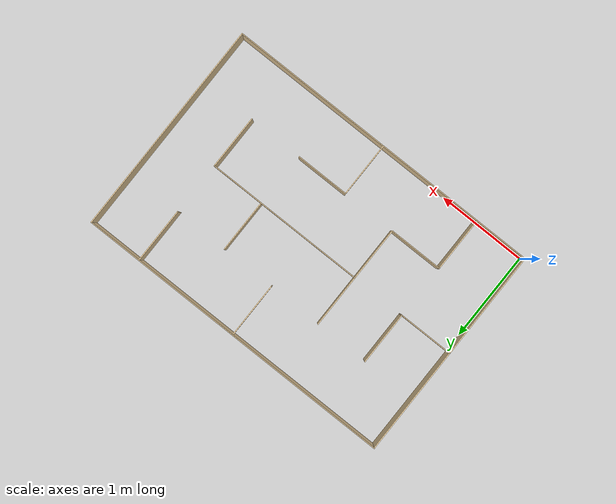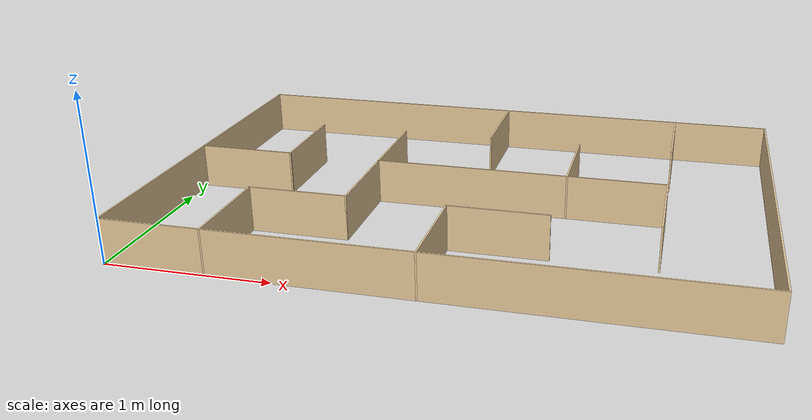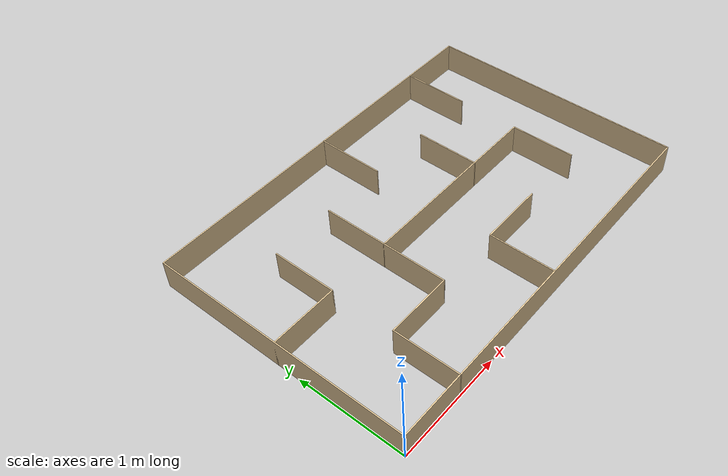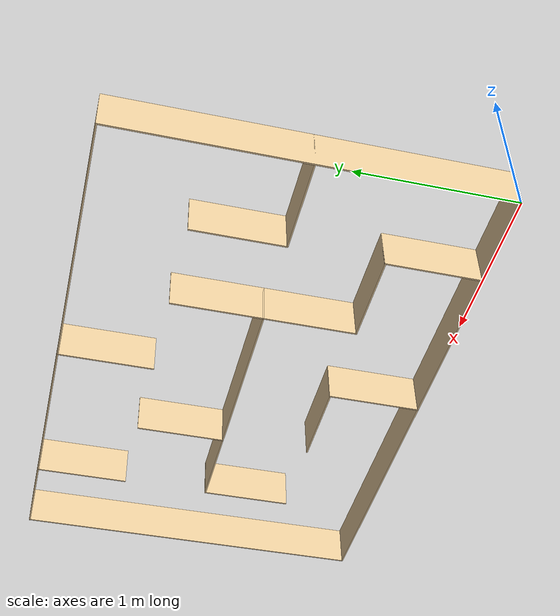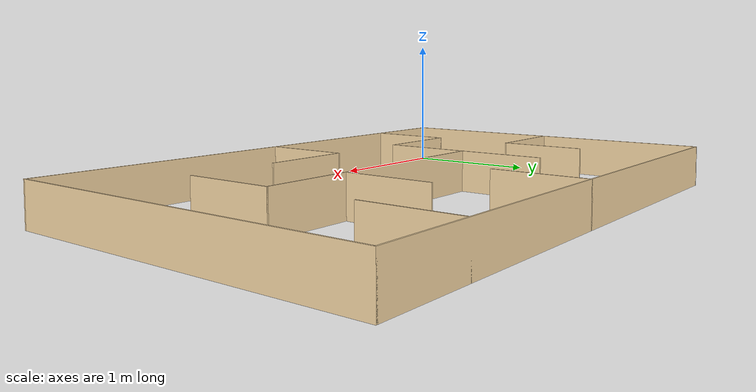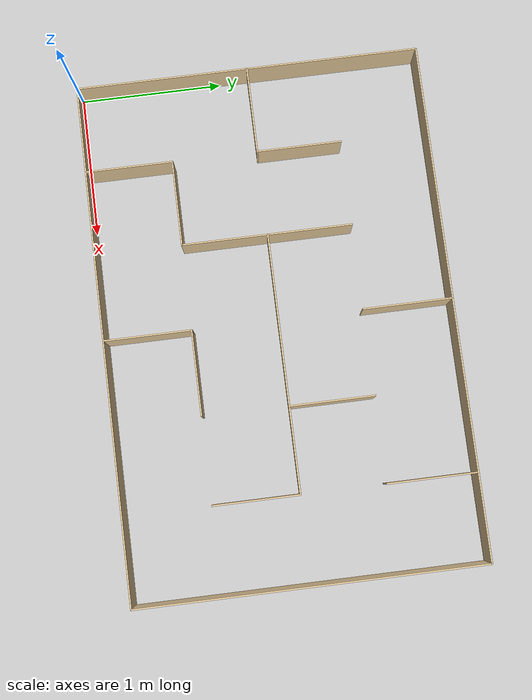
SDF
<?xml version='1.0'?>
<sdf version='1.6'>
  <model name='labyrinth_normal'>
    <pose frame=''>1.81 1.21 0 0 -0 0</pose>
    <link name='Wall_0'>
      <collision name='Wall_0_Collision'>
        <geometry>
          <box>
            <size>2.43 0.01 0.28</size>
          </box>
        </geometry>
        <pose frame=''>0 0 0.14 0 -0 0</pose>
      </collision>
      <visual name='Wall_0_Visual'>
        <pose frame=''>0 0 0.14 0 -0 0</pose>
        <geometry>
          <box>
            <size>2.43 0.01 0.28</size>
          </box>
        </geometry>
        <material>
          <script>
            <uri>file://media/materials/scripts/gazebo.material</uri>
            <name>Gazebo/Grey</name>
          </script>
          <ambient>0.921569 0.807843 0.615686 1</ambient>
        </material>
        <meta>
          <layer>0</layer>
        </meta>
      </visual>
      <pose frame=''>-1.81 0 0 0 -0 1.5708</pose>
    </link>
    <link name='Wall_11'>
      <collision name='Wall_11_Collision'>
        <geometry>
          <box>
            <size>0.6 0.01 0.28</size>
          </box>
        </geometry>
        <pose frame=''>0 0 0.14 0 -0 0</pose>
      </collision>
      <visual name='Wall_11_Visual'>
        <pose frame=''>0 0 0.14 0 -0 0</pose>
        <geometry>
          <box>
            <size>0.6 0.01 0.28</size>
          </box>
        </geometry>
        <material>
          <script>
            <uri>file://media/materials/scripts/gazebo.material</uri>
            <name>Gazebo/Grey</name>
          </script>
          <ambient>0.921569 0.807843 0.615686 1</ambient>
        </material>
        <meta>
          <layer>0</layer>
        </meta>
      </visual>
      <pose frame=''>-1.2 0.295 0 0 0 -1.5708</pose>
    </link>
    <link name='Wall_13'>
      <collision name='Wall_13_Collision'>
        <geometry>
          <box>
            <size>0.63 0.01 0.28</size>
          </box>
        </geometry>
        <pose frame=''>0 0 0.14 0 -0 0</pose>
      </collision>
      <visual name='Wall_13_Visual'>
        <pose frame=''>0 0 0.14 0 -0 0</pose>
        <geometry>
          <box>
            <size>0.63 0.01 0.28</size>
          </box>
        </geometry>
        <material>
          <script>
            <uri>file://media/materials/scripts/gazebo.material</uri>
            <name>Gazebo/Grey</name>
          </script>
          <ambient>0.921569 0.807843 0.615686 1</ambient>
        </material>
        <meta>
          <layer>0</layer>
        </meta>
      </visual>
      <pose frame=''>0 0.9 0 0 0 -1.5708</pose>
    </link>
    <link name='Wall_15'>
      <collision name='Wall_15_Collision'>
        <geometry>
          <box>
            <size>0.63 0.01 0.28</size>
          </box>
        </geometry>
        <pose frame=''>0 0 0.14 0 -0 0</pose>
      </collision>
      <visual name='Wall_15_Visual'>
        <pose frame=''>0 0 0.14 0 -0 0</pose>
        <geometry>
          <box>
            <size>0.63 0.01 0.28</size>
          </box>
        </geometry>
        <material>
          <script>
            <uri>file://media/materials/scripts/gazebo.material</uri>
            <name>Gazebo/Grey</name>
          </script>
          <ambient>0.921569 0.807843 0.615686 1</ambient>
        </material>
        <meta>
          <layer>0</layer>
        </meta>
      </visual>
      <pose frame=''>1.2 0.9 0 0 0 -1.5708</pose>
    </link>
    <link name='Wall_17'>
      <collision name='Wall_17_Collision'>
        <geometry>
          <box>
            <size>0.62 0.01 0.28</size>
          </box>
        </geometry>
        <pose frame=''>0 0 0.14 0 -0 0</pose>
      </collision>
      <visual name='Wall_17_Visual'>
        <pose frame=''>0 0 0.14 0 -0 0</pose>
        <geometry>
          <box>
            <size>0.62 0.01 0.28</size>
          </box>
        </geometry>
        <material>
          <script>
            <uri>file://media/materials/scripts/gazebo.material</uri>
            <name>Gazebo/Grey</name>
          </script>
          <ambient>0.921569 0.807843 0.615686 1</ambient>
        </material>
        <meta>
          <layer>0</layer>
        </meta>
      </visual>
      <pose frame=''>0 -0.905 0 0 -0 1.5708</pose>
    </link>
    <link name='Wall_19'>
      <collision name='Wall_19_Collision'>
        <geometry>
          <box>
            <size>0.6 0.01 0.28</size>
          </box>
        </geometry>
        <pose frame=''>0 0 0.14 0 -0 0</pose>
      </collision>
      <visual name='Wall_19_Visual'>
        <pose frame=''>0 0 0.14 0 -0 0</pose>
        <geometry>
          <box>
            <size>0.6 0.01 0.28</size>
          </box>
        </geometry>
        <material>
          <script>
            <uri>file://media/materials/scripts/gazebo.material</uri>
            <name>Gazebo/Grey</name>
          </script>
          <ambient>0.921569 0.807843 0.615686 1</ambient>
        </material>
        <meta>
          <layer>0</layer>
        </meta>
      </visual>
      <pose frame=''>0.295 -0.6 0 0 -0 0</pose>
    </link>
    <link name='Wall_2'>
      <collision name='Wall_2_Collision'>
        <geometry>
          <box>
            <size>3.63 0.01 0.28</size>
          </box>
        </geometry>
        <pose frame=''>0 0 0.14 0 -0 0</pose>
      </collision>
      <visual name='Wall_2_Visual'>
        <pose frame=''>0 0 0.14 0 -0 0</pose>
        <geometry>
          <box>
            <size>3.63 0.01 0.28</size>
          </box>
        </geometry>
        <material>
          <script>
            <uri>file://media/materials/scripts/gazebo.material</uri>
            <name>Gazebo/Grey</name>
          </script>
          <ambient>0.921569 0.807843 0.615686 1</ambient>
        </material>
        <meta>
          <layer>0</layer>
        </meta>
      </visual>
      <pose frame=''>0 1.21 0 0 -0 0</pose>
    </link>
    <link name='Wall_21'>
      <collision name='Wall_21_Collision'>
        <geometry>
          <box>
            <size>0.62 0.01 0.28</size>
          </box>
        </geometry>
        <pose frame=''>0 0 0.14 0 -0 0</pose>
      </collision>
      <visual name='Wall_21_Visual'>
        <pose frame=''>0 0 0.14 0 -0 0</pose>
        <geometry>
          <box>
            <size>0.62 0.01 0.28</size>
          </box>
        </geometry>
        <material>
          <script>
            <uri>file://media/materials/scripts/gazebo.material</uri>
            <name>Gazebo/Grey</name>
          </script>
          <ambient>0.921569 0.807843 0.615686 1</ambient>
        </material>
        <meta>
          <layer>0</layer>
        </meta>
      </visual>
      <pose frame=''>-1.2 -0.905 0 0 -0 1.5708</pose>
    </link>
    <link name='Wall_23'>
      <collision name='Wall_23_Collision'>
        <geometry>
          <box>
            <size>0.61 0.01 0.28</size>
          </box>
        </geometry>
        <pose frame=''>0 0 0.14 0 -0 0</pose>
      </collision>
      <visual name='Wall_23_Visual'>
        <pose frame=''>0 0 0.14 0 -0 0</pose>
        <geometry>
          <box>
            <size>0.61 0.01 0.28</size>
          </box>
        </geometry>
        <material>
          <script>
            <uri>file://media/materials/scripts/gazebo.material</uri>
            <name>Gazebo/Grey</name>
          </script>
          <ambient>0.921569 0.807843 0.615686 1</ambient>
        </material>
        <meta>
          <layer>0</layer>
        </meta>
      </visual>
      <pose frame=''>-0.9 -0.6 0 0 -0 0</pose>
    </link>
    <link name='Wall_25'>
      <collision name='Wall_25_Collision'>
        <geometry>
          <box>
            <size>1.2 0.01 0.28</size>
          </box>
        </geometry>
        <pose frame=''>0 0 0.14 0 -0 0</pose>
      </collision>
      <visual name='Wall_25_Visual'>
        <pose frame=''>0 0 0.14 0 -0 0</pose>
        <geometry>
          <box>
            <size>1.2 0.01 0.28</size>
          </box>
        </geometry>
        <material>
          <script>
            <uri>file://media/materials/scripts/gazebo.material</uri>
            <name>Gazebo/Grey</name>
          </script>
          <ambient>0.921569 0.807843 0.615686 1</ambient>
        </material>
        <meta>
          <layer>0</layer>
        </meta>
      </visual>
      <pose frame=''>-0.6 -0.005 0 0 -0 1.5708</pose>
    </link>
    <link name='Wall_27'>
      <collision name='Wall_27_Collision'>
        <geometry>
          <box>
            <size>1.81 0.01 0.28</size>
          </box>
        </geometry>
        <pose frame=''>0 0 0.14 0 -0 0</pose>
      </collision>
      <visual name='Wall_27_Visual'>
        <pose frame=''>0 0 0.14 0 -0 0</pose>
        <geometry>
          <box>
            <size>1.81 0.01 0.28</size>
          </box>
        </geometry>
        <material>
          <script>
            <uri>file://media/materials/scripts/gazebo.material</uri>
            <name>Gazebo/Grey</name>
          </script>
          <ambient>0.921569 0.807843 0.615686 1</ambient>
        </material>
        <meta>
          <layer>0</layer>
        </meta>
      </visual>
      <pose frame=''>0.3 0 0 0 -0 0</pose>
    </link>
    <link name='Wall_29'>
      <collision name='Wall_29_Collision'>
        <geometry>
          <box>
            <size>0.6 0.01 0.28</size>
          </box>
        </geometry>
        <pose frame=''>0 0 0.14 0 -0 0</pose>
      </collision>
      <visual name='Wall_29_Visual'>
        <pose frame=''>0 0 0.14 0 -0 0</pose>
        <geometry>
          <box>
            <size>0.6 0.01 0.28</size>
          </box>
        </geometry>
        <material>
          <script>
            <uri>file://media/materials/scripts/gazebo.material</uri>
            <name>Gazebo/Grey</name>
          </script>
          <ambient>0.921569 0.807843 0.615686 1</ambient>
        </material>
        <meta>
          <layer>0</layer>
        </meta>
      </visual>
      <pose frame=''>0.6 0.295 0 0 -0 1.5708</pose>
    </link>
    <link name='Wall_31'>
      <collision name='Wall_31_Collision'>
        <geometry>
          <box>
            <size>0.61 0.01 0.28</size>
          </box>
        </geometry>
        <pose frame=''>0 0 0.14 0 -0 0</pose>
      </collision>
      <visual name='Wall_31_Visual'>
        <pose frame=''>0 0 0.14 0 -0 0</pose>
        <geometry>
          <box>
            <size>0.61 0.01 0.28</size>
          </box>
        </geometry>
        <material>
          <script>
            <uri>file://media/materials/scripts/gazebo.material</uri>
            <name>Gazebo/Grey</name>
          </script>
          <ambient>0.921569 0.807843 0.615686 1</ambient>
        </material>
        <meta>
          <layer>0</layer>
        </meta>
      </visual>
      <pose frame=''>1.2 -0.3 0 0 0 -1.5708</pose>
    </link>
    <link name='Wall_4'>
      <collision name='Wall_4_Collision'>
        <geometry>
          <box>
            <size>2.43 0.01 0.28</size>
          </box>
        </geometry>
        <pose frame=''>0 0 0.14 0 -0 0</pose>
      </collision>
      <visual name='Wall_4_Visual'>
        <pose frame=''>0 0 0.14 0 -0 0</pose>
        <geometry>
          <box>
            <size>2.43 0.01 0.28</size>
          </box>
        </geometry>
        <material>
          <script>
            <uri>file://media/materials/scripts/gazebo.material</uri>
            <name>Gazebo/Grey</name>
          </script>
          <ambient>0.921569 0.807843 0.615686 1</ambient>
        </material>
        <meta>
          <layer>0</layer>
        </meta>
      </visual>
      <pose frame=''>1.81 0 0 0 0 -1.5708</pose>
    </link>
    <link name='Wall_6'>
      <collision name='Wall_6_Collision'>
        <geometry>
          <box>
            <size>3.63 0.01 0.28</size>
          </box>
        </geometry>
        <pose frame=''>0 0 0.14 0 -0 0</pose>
      </collision>
      <visual name='Wall_6_Visual'>
        <pose frame=''>0 0 0.14 0 -0 0</pose>
        <geometry>
          <box>
            <size>3.63 0.01 0.28</size>
          </box>
        </geometry>
        <material>
          <script>
            <uri>file://media/materials/scripts/gazebo.material</uri>
            <name>Gazebo/Grey</name>
          </script>
          <ambient>0.921569 0.807843 0.615686 1</ambient>
        </material>
        <meta>
          <layer>0</layer>
        </meta>
      </visual>
      <pose frame=''>0 -1.21 0 0 -0 3.14159</pose>
    </link>
    <link name='Wall_9'>
      <collision name='Wall_9_Collision'>
        <geometry>
          <box>
            <size>0.62 0.01 0.28</size>
          </box>
        </geometry>
        <pose frame=''>0 0 0.14 0 -0 0</pose>
      </collision>
      <visual name='Wall_9_Visual'>
        <pose frame=''>0 0 0.14 0 -0 0</pose>
        <geometry>
          <box>
            <size>0.62 0.01 0.28</size>
          </box>
        </geometry>
        <material>
          <script>
            <uri>file://media/materials/scripts/gazebo.material</uri>
            <name>Gazebo/Grey</name>
          </script>
          <ambient>0.921569 0.807843 0.615686 1</ambient>
        </material>
        <meta>
          <layer>0</layer>
        </meta>
      </visual>
      <pose frame=''>-1.505 0 0 0 -0 0</pose>
    </link>
    <static>1</static>
  </model>
</sdf>
